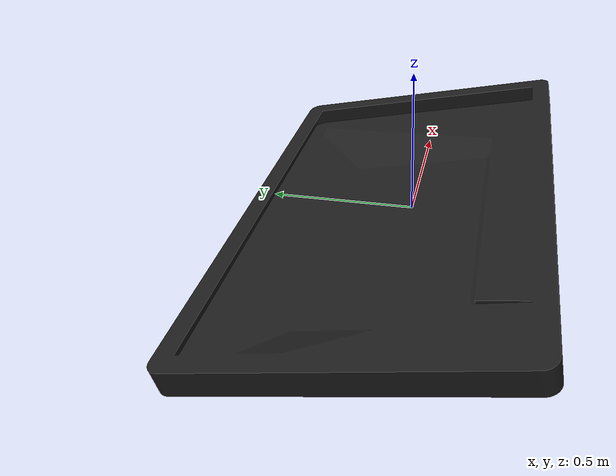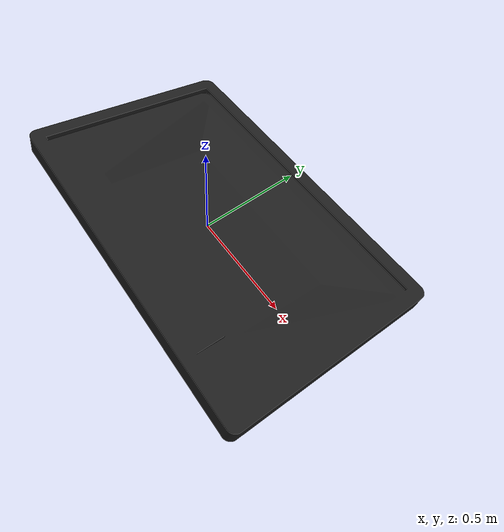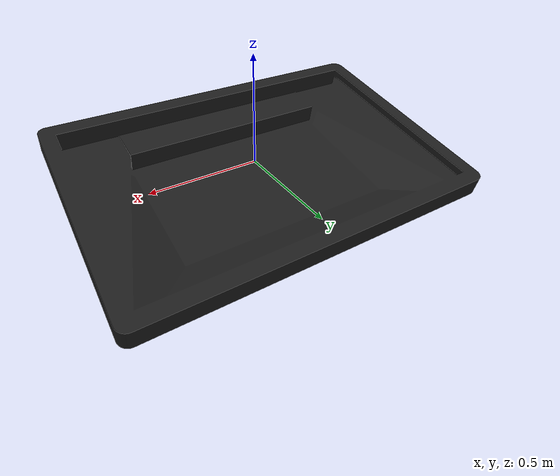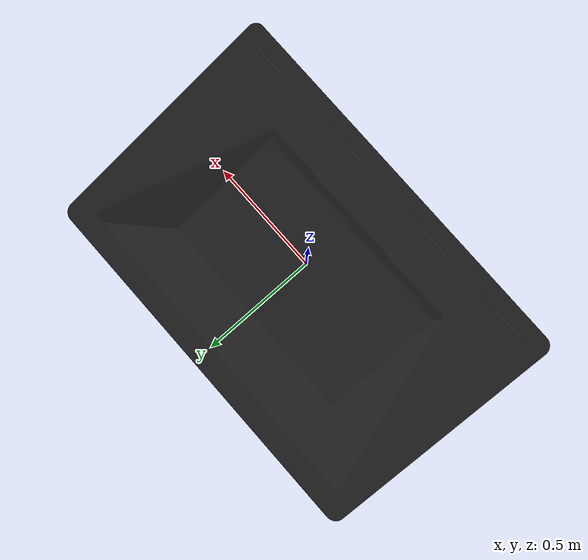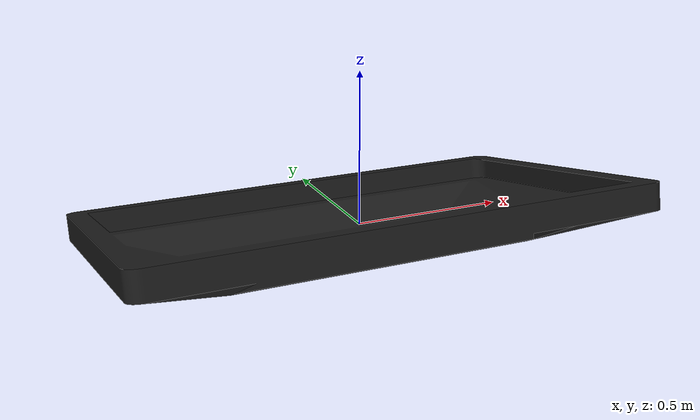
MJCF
<mujoco model="new-1">
  <default>
    <default class="visual">
      <geom group="2" type="mesh" contype="0" conaffinity="0"/>
    </default>
    <default class="collision">
      <geom group="3" type="mesh"/>
    </default>
  </default>
  <asset>
    <material name="material-0" specular="0.06666666666666667" shininess="0.03" rgba="0.11372549019607843 0.11372549019607843 0.11372549019607843 1"/>
    <mesh file="new-1.obj"/>
  </asset>
  <worldbody>
    <body name="new-1">
      <geom material="material-0" mesh="new-1" class="visual"/>
      <geom mesh="new-1" class="collision"/>
    </body>
  </worldbody>
</mujoco>
